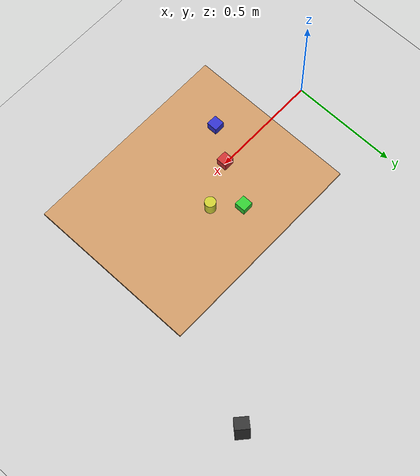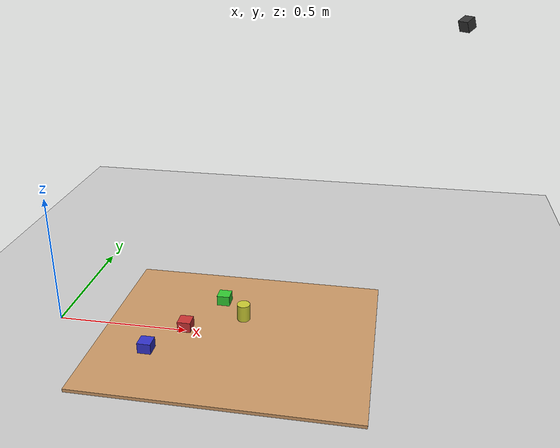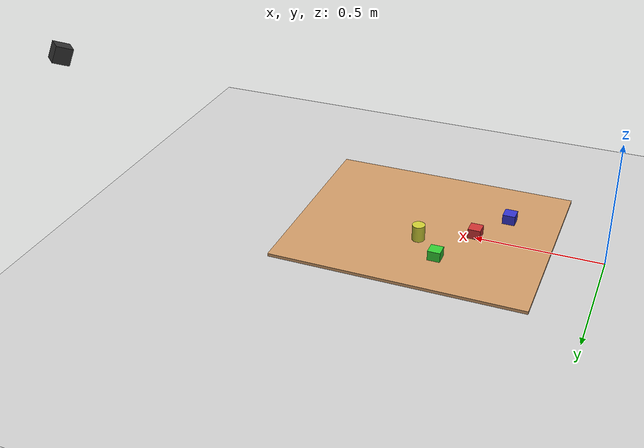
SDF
<?xml version="1.0" ?>
<sdf version="1.6">
  <world name="xarm_6_world">

    <!-- Global light source -->
    <include>
      <uri>model://sun</uri>
    </include>

    <!-- Ground plane -->
    <include>
      <uri>model://ground_plane</uri>
    </include>

    <!-- Physics settings -->
    <physics name='default_physics' default='0' type='ode'>
      <gravity>0 0 -9.8066</gravity>
      <ode>
        <solver>
          <type>quick</type>
          <iters>150</iters>
          <sor>1.3</sor>
          <use_dynamic_moi_rescaling>0</use_dynamic_moi_rescaling>
        </solver>
        <constraints>
          <cfm>0.00001</cfm>
          <erp>0.2</erp>
          <contact_max_correcting_vel>1000</contact_max_correcting_vel>
          <contact_surface_layer>0.01</contact_surface_layer>
        </constraints>
      </ode>
      <max_step_size>0.004</max_step_size>
      <real_time_factor>1.0</real_time_factor>
      <real_time_update_rate>250</real_time_update_rate>
    </physics>

    <!-- Work table -->
    <model name="work_table">
      <pose>0.7 0 0 0 0 0</pose>
      <static>true</static>
      <link name="table_link">
        <visual name="table_visual">
          <geometry>
            <box>
              <size>1.0 0.8 0.02</size>
            </box>
          </geometry>
          <material>
            <ambient>0.8 0.6 0.4 1</ambient>
            <diffuse>0.8 0.6 0.4 1</diffuse>
            <specular>0.1 0.1 0.1 1</specular>
          </material>
        </visual>
        <collision name="table_collision">
          <geometry>
            <box>
              <size>1.0 0.8 0.02</size>
            </box>
          </geometry>
          <surface>
            <friction>
              <ode>
                <mu>0.6</mu>
                <mu2>0.6</mu2>
              </ode>
            </friction>
          </surface>
        </collision>
      </link>
    </model>

    <!-- Manipulation objects -->
    <model name="red_cube">
      <pose>0.5 0.0 0.025 0 0 0</pose>
      <link name="cube_link">
        <visual name="cube_visual">
          <geometry>
            <box>
              <size>0.05 0.05 0.05</size>
            </box>
          </geometry>
          <material>
            <ambient>0.8 0.2 0.2 1</ambient>
            <diffuse>0.8 0.2 0.2 1</diffuse>
            <specular>0.1 0.1 0.1 1</specular>
          </material>
        </visual>
        <collision name="cube_collision">
          <geometry>
            <box>
              <size>0.05 0.05 0.05</size>
            </box>
          </geometry>
          <surface>
            <friction>
              <ode>
                <mu>0.8</mu>
                <mu2>0.8</mu2>
              </ode>
            </friction>
          </surface>
        </collision>
        <inertial>
          <mass>0.1</mass>
          <inertia>
            <ixx>0.000042</ixx>
            <ixy>0</ixy>
            <ixz>0</ixz>
            <iyy>0.000042</iyy>
            <iyz>0</iyz>
            <izz>0.000042</izz>
          </inertia>
        </inertial>
      </link>
    </model>

    <model name="green_cube">
      <pose>0.6 0.2 0.025 0 0 0</pose>
      <link name="cube_link">
        <visual name="cube_visual">
          <geometry>
            <box>
              <size>0.05 0.05 0.05</size>
            </box>
          </geometry>
          <material>
            <ambient>0.2 0.8 0.2 1</ambient>
            <diffuse>0.2 0.8 0.2 1</diffuse>
            <specular>0.1 0.1 0.1 1</specular>
          </material>
        </visual>
        <collision name="cube_collision">
          <geometry>
            <box>
              <size>0.05 0.05 0.05</size>
            </box>
          </geometry>
          <surface>
            <friction>
              <ode>
                <mu>0.8</mu>
                <mu2>0.8</mu2>
              </ode>
            </friction>
          </surface>
        </collision>
        <inertial>
          <mass>0.1</mass>
          <inertia>
            <ixx>0.000042</ixx>
            <ixy>0</ixy>
            <ixz>0</ixz>
            <iyy>0.000042</iyy>
            <iyz>0</iyz>
            <izz>0.000042</izz>
          </inertia>
        </inertial>
      </link>
    </model>

    <model name="blue_cube">
      <pose>0.4 -0.15 0.025 0 0 0</pose>
      <link name="cube_link">
        <visual name="cube_visual">
          <geometry>
            <box>
              <size>0.05 0.05 0.05</size>
            </box>
          </geometry>
          <material>
            <ambient>0.2 0.2 0.8 1</ambient>
            <diffuse>0.2 0.2 0.8 1</diffuse>
            <specular>0.1 0.1 0.1 1</specular>
          </material>
        </visual>
        <collision name="cube_collision">
          <geometry>
            <box>
              <size>0.05 0.05 0.05</size>
            </box>
          </geometry>
          <surface>
            <friction>
              <ode>
                <mu>0.8</mu>
                <mu2>0.8</mu2>
              </ode>
            </friction>
          </surface>
        </collision>
        <inertial>
          <mass>0.1</mass>
          <inertia>
            <ixx>0.000042</ixx>
            <ixy>0</ixy>
            <ixz>0</ixz>
            <iyy>0.000042</iyy>
            <iyz>0</iyz>
            <izz>0.000042</izz>
          </inertia>
        </inertial>
      </link>
    </model>

    <!-- Cylinder objects -->
    <model name="yellow_cylinder">
      <pose>0.7 0.1 0.0375 0 0 0</pose>
      <link name="cylinder_link">
        <visual name="cylinder_visual">
          <geometry>
            <cylinder>
              <radius>0.025</radius>
              <length>0.075</length>
            </cylinder>
          </geometry>
          <material>
            <ambient>0.8 0.8 0.2 1</ambient>
            <diffuse>0.8 0.8 0.2 1</diffuse>
            <specular>0.1 0.1 0.1 1</specular>
          </material>
        </visual>
        <collision name="cylinder_collision">
          <geometry>
            <cylinder>
              <radius>0.025</radius>
              <length>0.075</length>
            </cylinder>
          </geometry>
          <surface>
            <friction>
              <ode>
                <mu>0.8</mu>
                <mu2>0.8</mu2>
              </ode>
            </friction>
          </surface>
        </collision>
        <inertial>
          <mass>0.08</mass>
          <inertia>
            <ixx>0.000040</ixx>
            <ixy>0</ixy>
            <ixz>0</ixz>
            <iyy>0.000040</iyy>
            <iyz>0</iyz>
            <izz>0.000025</izz>
          </inertia>
        </inertial>
      </link>
    </model>

    <!-- Camera for external observation -->
    <model name="external_camera">
      <pose>1.5 1.0 1.0 0 0.4 -2.3</pose>
      <static>true</static>
      <link name="camera_link">
        <visual name="camera_visual">
          <geometry>
            <box>
              <size>0.05 0.05 0.05</size>
            </box>
          </geometry>
          <material>
            <ambient>0.2 0.2 0.2 1</ambient>
            <diffuse>0.2 0.2 0.2 1</diffuse>
          </material>
        </visual>
        <sensor name="camera" type="camera">
          <camera>
            <horizontal_fov>1.047</horizontal_fov>
            <image>
              <width>640</width>
              <height>480</height>
            </image>
            <clip>
              <near>0.1</near>
              <far>100</far>
            </clip>
          </camera>
          <plugin name="camera_controller" filename="libgazebo_ros_camera.so">
            <ros>
              <namespace>/external_camera</namespace>
              <remapping>image_raw:=image_raw</remapping>
              <remapping>camera_info:=camera_info</remapping>
            </ros>
            <camera_name>external_camera</camera_name>
            <frame_name>external_camera_optical</frame_name>
            <hack_baseline>0.07</hack_baseline>
          </plugin>
        </sensor>
      </link>
    </model>

    <!-- Scene configuration -->
    <scene>
      <ambient>0.4 0.4 0.4 1</ambient>
      <background>0.7 0.7 0.7 1</background>
      <shadows>true</shadows>
    </scene>

    <!-- GUI settings -->
    <gui fullscreen='0'>
      <camera name='user_camera'>
        <pose>2.0 2.0 1.5 0 0.4 -2.3</pose>
        <view_controller>orbit</view_controller>
        <projection_type>perspective</projection_type>
      </camera>
    </gui>

  </world>
</sdf>
